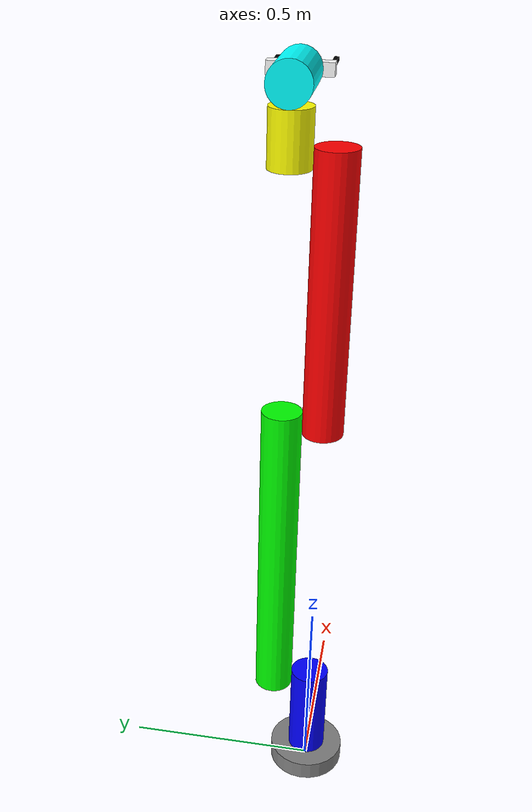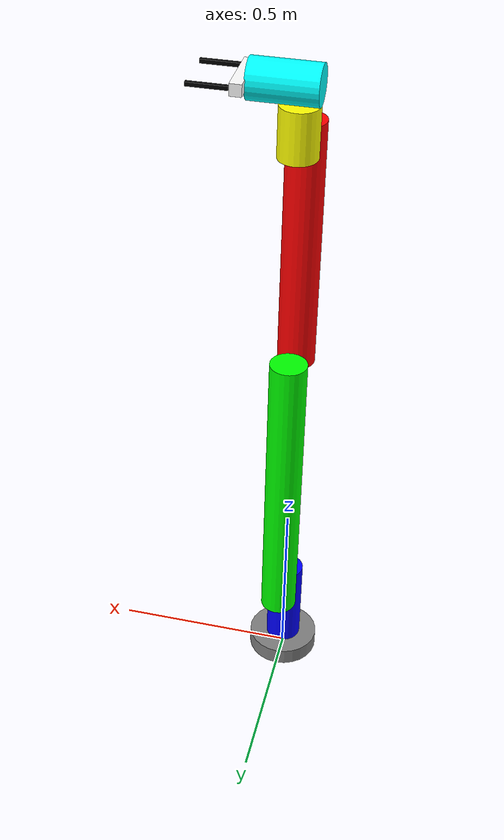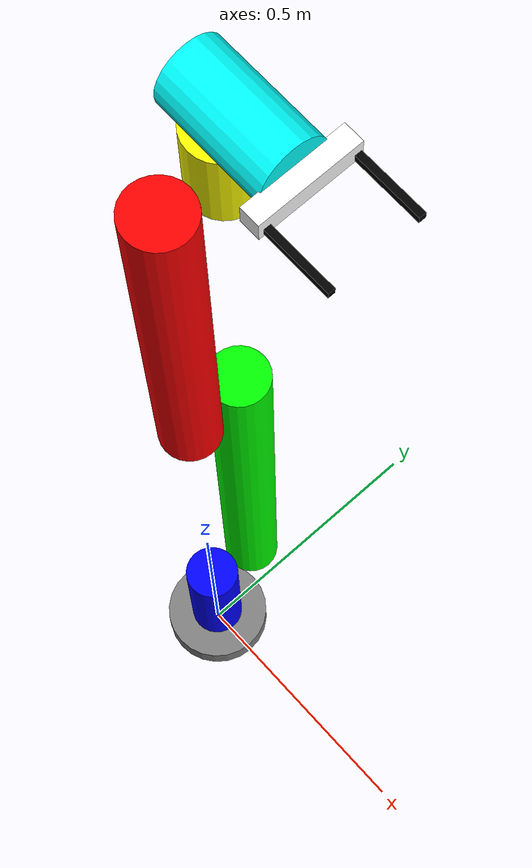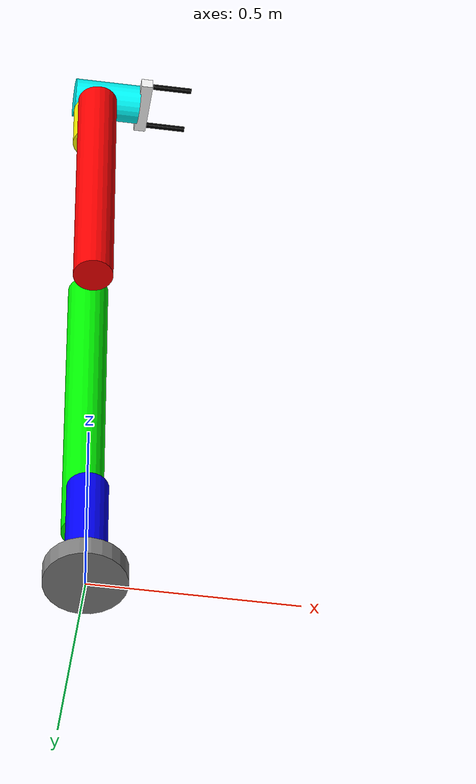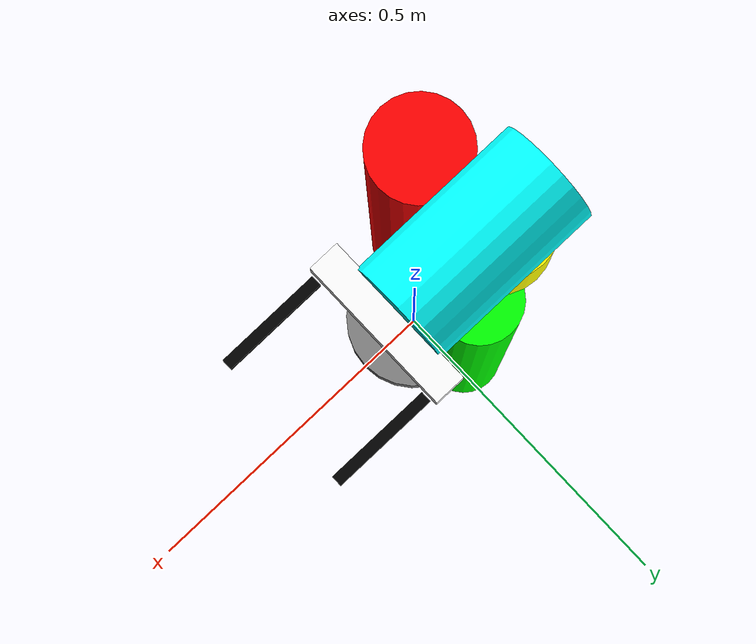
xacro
<?xml version="1.0"?>
<robot xmlns:xacro="http://www.ros.org/wiki/xacro" name="robot_6dof_arm">
<xacro:include filename="$(find robot_description)/urdf/overhead_camera.xacro"/>

<!-- Instantiate the overhead camera macro -->
<xacro:overhead_camera
prefix="overhead"
x="0.0"
y="0.0"
z="1.5"
roll="0.0"
pitch="-1.5708"
yaw="0.0"
topic="/overhead_camera/image_raw"
/>

    <material name="Grey"><color rgba="0.5 0.5 0.5 1.0"/></material>
    <material name="Blue"><color rgba="0.0 0.0 1.0 1.0"/></material>
    <material name="Green"><color rgba="0.0 1.0 0.0 1.0"/></material>
    <material name="Red"><color rgba="1.0 0.0 0.0 1.0"/></material>
    <material name="Yellow"><color rgba="1.0 1.0 0.0 1.0"/></material>
    <material name="Cyan"><color rgba="0.0 1.0 1.0 1.0"/></material>
    <material name="Magenta"><color rgba="1.0 0.0 1.0 1.0"/></material>
    <material name="Black"><color rgba="0.0 0.0 0.0 1.0"/></material>
    <material name="White"><color rgba="1.0 1.0 1.0 1.0"/></material>

    <!-- Example transmission (repeat for each joint) -->
    <transmission name="joint1_trans">
    <type>transmission_interface/SimpleTransmission</type>
    <actuator name="joint1_motor"/>
    <joint name="base_link_link1"/>
    </transmission>

    <transmission name="joint2_trans">
    <type>transmission_interface/SimpleTransmission</type>
    <actuator name="joint2_motor"/>
    <joint name="link1_link2"/>
    </transmission>

    <transmission name="joint3_trans">
    <type>transmission_interface/SimpleTransmission</type>
    <actuator name="joint3_motor"/>
    <joint name="link2_link3"/>
    </transmission>

    <transmission name="joint4_trans">
    <type>transmission_interface/SimpleTransmission</type>
    <actuator name="joint4_motor"/>
    <joint name="link3_link4"/>
    </transmission>

    <transmission name="joint5_trans">
    <type>transmission_interface/SimpleTransmission</type>
    <actuator name="joint5_motor"/>
    <joint name="link4_link5"/>
    </transmission>

    <!--End effector-->

    <transmission name="joint6_trans">
    <type>transmission_interface/SimpleTransmission</type>
    <actuator name="joint6_motor"/>
    <joint name="link5_tcp_connector"/>
    </transmission>

    <transmission name="joint7_trans">
    <type>transmission_interface/SimpleTransmission</type>
    <actuator name="joint7_motor"/>
    <joint name="tcp_connector_gripper_right"/>
    </transmission>

    <transmission name="joint8_trans">
    <type>transmission_interface/SimpleTransmission</type>
    <actuator name="joint8_motor"/>
    <joint name="tcp_connector_gripper_left"/>
    </transmission>

    <gazebo>
        <initial_position xyz="0 0 0"/>
        <plugin filename="gz_ros2_control-system"
                name="gz_ros2_control::GazeboSimROS2ControlPlugin">
            <parameters>$(find robot_description)/config/controllers.yaml</parameters>
        </plugin>
    </gazebo>

    <ros2_control name="IgnitionSystem" type="system">
        <hardware>
            <plugin>gz_ros2_control/GazeboSimSystem</plugin>
        </hardware>

        <joint name="base_link_link1">
            <command_interface name="position">
                <param name="min">-1.57</param>
                <param name="max">1.57</param>
            </command_interface>
            <state_interface name="position"/>
            <state_interface name="velocity"/>
            <param name="initial_position">0.0</param>
        </joint>
        <joint name="link1_link2">
            <command_interface name="position">
                <param name="min">-1.57</param>
                <param name="max">1.57</param>
            </command_interface>
            <state_interface name="position"/>
            <state_interface name="velocity"/>

        </joint>
        <joint name="link2_link3">
            <command_interface name="position">
                <param name="min">-1.57</param>
                <param name="max">1.57</param>
            </command_interface>
            <state_interface name="position"/>
            <state_interface name="velocity"/>

        </joint>
        <joint name="link3_link4">
            <command_interface name="position">
                <param name="min">-1.57</param>
                <param name="max">1.57</param>
            </command_interface>
            <state_interface name="position"/>
            <state_interface name="velocity"/>

        </joint>
        <joint name="link4_link5">
            <command_interface name="position">
                <param name="min">-1.57</param>
                <param name="max">1.57</param>
            </command_interface>
            <state_interface name="position"/>
            <state_interface name="velocity"/>

        </joint>
        <joint name="link5_tcp_connector">
             <command_interface name="position">
                <param name="min">-1.57</param>
                <param name="max">1.57</param>
            </command_interface>
             <state_interface name="position"/>
             <state_interface name="velocity"/>

        </joint>
        <joint name="tcp_connector_gripper_right">
            <command_interface name="position">
                <param name="min">0.0</param>
                <param name="max">0.055</param>
            </command_interface>
            <state_interface name="position"/>
            <state_interface name="velocity"/>

        </joint>
        <joint name="tcp_connector_gripper_left">
            <command_interface name="position">
                <param name="min">-0.055</param>
                <param name="max">0.0</param>
            </command_interface>
            <state_interface name="position"/>
            <state_interface name="velocity"/>

        </joint>
    </ros2_control>

    <!-- Links -->
    <link name="base_link">
        <visual>
            <origin xyz="0.0 0.0 0.025" rpy="0.0 0.0 0.0"/>
            <geometry>
                <cylinder radius="0.1" length="0.05"/>
            </geometry>
            <material name="Grey"/>
        </visual>
        <collision>
            <origin xyz="0.0 0.0 0.025" rpy="0.0 0.0 0.0"/>
            <geometry>
                <cylinder radius="0.1" length="0.05"/>
            </geometry>
        </collision>
        <inertial>
            <origin xyz="0 0 0" rpy="0 0 0"/>
            <mass value="5.0"/>
            <!-- cylinder inertia (r=0.1, L=0.05) -->
            <inertia ixx="0.013542" ixy="0.0" ixz="0.0" iyy="0.013542" iyz="0.0" izz="0.025000"/>
        </inertial>
    </link>

    <link name="link_1">
        <visual>
            <origin xyz="0.0 0.0 0.132" rpy="0.0 0.0 0.0"/>
            <geometry>
                <cylinder radius="0.05" length="0.264"/>
            </geometry>
            <material name="Blue"/>
        </visual>
        <collision>
            <origin xyz="0.0 0.0 0.132" rpy="0.0 0.0 0.0"/>
            <geometry>
                <cylinder radius="0.05" length="0.264"/>
            </geometry>
        </collision>
        <inertial>
            <origin xyz="0 0 0" rpy="0 0 0"/>
            <mass value="2.0"/>
            <!-- cylinder inertia (r=0.05, L=0.264) -->
            <inertia ixx="0.012866" ixy="0.0" ixz="0.0" iyy="0.012866" iyz="0.0" izz="0.002500"/>
        </inertial>
    </link>

    <joint name="base_link_link1" type="revolute">
        <parent link="base_link"/>
        <child link="link_1"/>
        <origin xyz="0.0 0.0 0.05" rpy="0 0 0"/>
        <axis xyz="0 0 1"/>
        <limit lower="-3.14159" upper="3.14159" effort="50.0" velocity="1000.0"/>
    </joint>

    <link name="link_2">
        <visual>
            <origin xyz="0.0 0.0 0.425" rpy="0.0 0.0 0.0"/>
            <geometry>
                <cylinder radius="0.05" length="0.850"/>
            </geometry>
            <material name="Green"/>
        </visual>
        <collision>
            <origin xyz="0.0 0.0 0.425" rpy="0.0 0.0 0.0"/>
            <geometry>
                <cylinder radius="0.05" length="0.850"/>
            </geometry>
        </collision>
        <inertial>
            <origin xyz="0 0 0" rpy="0 0 0"/>
            <mass value="3.0"/>
            <!-- cylinder inertia (r=0.05, L=0.85) -->
            <inertia ixx="0.182500" ixy="0.0" ixz="0.0" iyy="0.182500" iyz="0.0" izz="0.003750"/>
        </inertial>
    </link>

    <joint name="link1_link2" type="revolute">
        <parent link="link_1"/>
        <child link="link_2"/>
        <origin xyz="0.0 0.1 0.214" rpy="0 0 0"/>
        <axis xyz="0 1 0"/>
        <limit lower="-2.50" upper="2.50" effort="50.0" velocity="1000.0"/>
    </joint>

    <link name="link_3">
        <visual>
            <origin xyz="0.0 0.0 0.340" rpy="0.0 0.0 0.0"/>
            <geometry>
                <cylinder radius="0.05" length="0.680"/>
            </geometry>
            <material name="Red"/>
        </visual>
        <collision>
            <origin xyz="0.0 0.0 0.340" rpy="0.0 0.0 0.0"/>
            <geometry>
                <cylinder radius="0.05" length="0.680"/>
            </geometry>
        </collision>
        <inertial>
            <origin xyz="0 0 0" rpy="0 0 0"/>
            <mass value="2.5"/>
            <!-- cylinder inertia (r=0.05, L=0.68) -->
            <inertia ixx="0.097896" ixy="0.0" ixz="0.0" iyy="0.097896" iyz="0.0" izz="0.003125"/>
        </inertial>
    </link>

    <joint name="link2_link3" type="revolute">
        <parent link="link_2"/>
        <child link="link_3"/>
        <origin xyz="0.0 -0.1 0.8" rpy="0 0 0"/>
        <axis xyz="0 1 0"/>
        <limit lower="-3.14" upper="3.14" effort="50.0" velocity="1000.0"/>
    </joint>

    <link name="link_4">
        <visual>
            <origin xyz="0.0 0.0 0.065" rpy="0.0 0.0 0.0"/>
            <geometry>
                <cylinder radius="0.05" length="0.130"/>
            </geometry>
            <material name="Yellow"/>
        </visual>
        <collision>
            <origin xyz="0.0 0.0 0.065" rpy="0.0 0.0 0.0"/>
            <geometry>
                <cylinder radius="0.05" length="0.130"/>
            </geometry>
        </collision>
        <inertial>
            <origin xyz="0 0 0" rpy="0 0 0"/>
            <mass value="1.5"/>
            <!-- cylinder inertia (r=0.05, L=0.13) -->
            <inertia ixx="0.003050" ixy="0.0" ixz="0.0" iyy="0.003050" iyz="0.0" izz="0.001875"/>
        </inertial>
    </link>

    <joint name="link3_link4" type="revolute">
        <parent link="link_3"/>
        <child link="link_4"/>
        <origin xyz="0.0 0.1 0.630" rpy="0 0 0"/>
        <axis xyz="0 1 0"/>
        <limit lower="-3.14" upper="3.14" effort="50.0" velocity="1000.0"/>
    </joint>

    <link name="link_5">
        <visual>
            <origin xyz="0.0 0.0 0.035" rpy="0.0 0.0 0.0"/>
            <geometry>
                <cylinder radius="0.05" length="0.170"/>
            </geometry>
            <material name="Cyan"/>
        </visual>
        <collision>
            <origin xyz="0.0 0.0 0.035" rpy="0.0 0.0 0.0"/>
            <geometry>
                <cylinder radius="0.05" length="0.170"/>
            </geometry>
        </collision>
        <inertial>
            <origin xyz="0 0 0" rpy="0 0 0"/>
            <mass value="1.0"/>
            <!-- cylinder inertia (r=0.05, L=0.17) -->
            <inertia ixx="0.003033" ixy="0.0" ixz="0.0" iyy="0.003033" iyz="0.0" izz="0.001250"/>
        </inertial>
    </link>
    <joint name="link4_link5" type="revolute">
        <parent link="link_4"/>
        <child link="link_5"/>
        <origin xyz="0.0 0.0 0.180" rpy="0 1.57 0"/>
        <axis xyz="1 0 0"/>
        <limit lower="-3.14" upper="3.14" effort="50.0" velocity="1000.0"/>
    </joint>
    <!--build the TCP or end effector-->
    <link name="tcp_connector">
        <visual>
            <origin xyz="0.0 0.0 0.0125" rpy="0.0 0.0 0.0"/>
            <geometry>
                <box size="0.03 0.150 0.03"/>
            </geometry>
            <material name="White"/>
        </visual>
        <collision>
            <origin xyz="0.0 0.0 0.0125" rpy="0.0 0.0 0.0"/>
            <geometry>
                <box size="0.03 0.150 0.03"/>
            </geometry>
        </collision>
        <inertial>
            <origin xyz="0 0 0" rpy="0 0 0"/>
            <mass value="0.5"/>
            <!-- box inertia (0.03 x 0.15 x 0.03) -->
            <inertia ixx="0.000975" ixy="0.0" ixz="0.0" iyy="0.000075" iyz="0.0" izz="0.000975"/>
        </inertial>
    </link>
    <joint name="link5_tcp_connector" type="revolute">
        <parent link="link_5"/>
        <child link="tcp_connector"/>
        <origin xyz="0.0 0.0 0.120" rpy="0 0 0"/>
        <axis xyz="0 0 1"/>
        <limit lower="-3.14" upper="3.14" effort="50.0" velocity="1000.0"/>
    </joint>

    <link name="gripper_right">
        <visual>
            <origin xyz="0.0 0.0 0.05" rpy="0.0 0.0 0.0"/>
            <geometry>
                <box size="0.01 0.01 0.1"/>
            </geometry>
            <material name="Black"/>
        </visual>
        <collision>
            <origin xyz="0.0 0.0 0.05" rpy="0.0 0.0 0.0"/>
            <geometry>
                <box size="0.01 0.01 0.1"/>
            </geometry>
        </collision>
        <inertial>
            <origin xyz="0 0 0" rpy="0 0 0"/>
            <mass value="0.2"/>
            <!-- box inertia (0.01 x 0.01 x 0.1) -->
            <inertia ixx="0.000168" ixy="0.0" ixz="0.0" iyy="0.000168" iyz="0.0" izz="0.000003"/>
        </inertial>
    </link>

    <joint name="tcp_connector_gripper_right" type="prismatic">
        <parent link="tcp_connector"/>
        <child link="gripper_right"/>
        <origin xyz="0.0 -0.065 0.03" rpy="0 0 0"/>
        <axis xyz="0 1 0"/>
        <limit lower="0.0" upper="0.055" effort="50.0" velocity="1000.0"/>
    </joint>

    <link name="gripper_left">
        <visual>
            <origin xyz="0.0 0.0 0.05" rpy="0.0 0.0 0.0"/>
            <geometry>
                <box size="0.01 0.01 0.1"/>
            </geometry>
            <material name="Black"/>
        </visual>
        <collision>
            <origin xyz="0.0 0.0 0.05" rpy="0.0 0.0 0.0"/>
            <geometry>
                <box size="0.01 0.01 0.1"/>
            </geometry>
        </collision>
        <inertial>
            <origin xyz="0 0 0" rpy="0 0 0"/>
            <mass value="0.2"/>
            <inertia ixx="0.000168" ixy="0.0" ixz="0.0" iyy="0.000168" iyz="0.0" izz="0.000003"/>
        </inertial>
    </link>

    <joint name="tcp_connector_gripper_left" type="prismatic">
        <parent link="tcp_connector"/>
        <child link="gripper_left"/>
        <origin xyz="0.0 0.065 0.03" rpy="0 0 0"/>
        <axis xyz="0 1 0"/>
        <limit lower="-0.055" upper="0.0" effort="50.0" velocity="1000.0"/>
    </joint>

    <link name="world"/>

    <joint name="fixed_base_joint" type="fixed">
        <parent link="world"/>
        <child link="base_link"/>
    </joint>

</robot>

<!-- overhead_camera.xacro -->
<robot xmlns:xacro="http://www.ros.org/wiki/xacro" name="overhead_camera">

  <xacro:macro name="overhead_camera"
      params="
        prefix='overhead'
        x='0.0' y='-1.2' z='1.2'
        roll='0.0' pitch='-1.5708' yaw='0.0'
        fov='1.0472' width='1280' height='720' update_rate='30'
        topic='/overhead_cam' ">

    <!-- Base link attached to world -->
    <link name="${prefix}_base_link"/>

    <joint name="${prefix}_fixed_joint" type="fixed">
      <parent link="world"/>
      <child  link="${prefix}_base_link"/>
      <origin xyz="${x} ${y} ${z}" rpy="${roll} ${pitch} ${yaw}"/>
    </joint>

    <!-- Camera link -->
    <link name="${prefix}_camera_link"/>
    <joint name="${prefix}_camera_joint" type="fixed">
      <parent link="${prefix}_base_link"/>
      <child  link="${prefix}_camera_link"/>
      <origin xyz="0 0 0" rpy="0 0 0"/>
    </joint>

    <!-- Gazebo camera sensor -->
    <gazebo reference="${prefix}_camera_link">
      <sensor name="${prefix}_camera_sensor" type="camera">
        <pose>0 0 0 0 0 0</pose>
        <camera>
          <horizontal_fov>${fov}</horizontal_fov>
          <image>
            <width>${width}</width>
            <height>${height}</height>
            <format>R8G8B8</format>
          </image>
          <clip>
            <near>0.01</near>
            <far>10</far>
          </clip>
        </camera>
        <always_on>true</always_on>
        <update_rate>${update_rate}</update_rate>
        <visualize>true</visualize>
      </sensor>
    </gazebo>

  </xacro:macro>

</robot>
